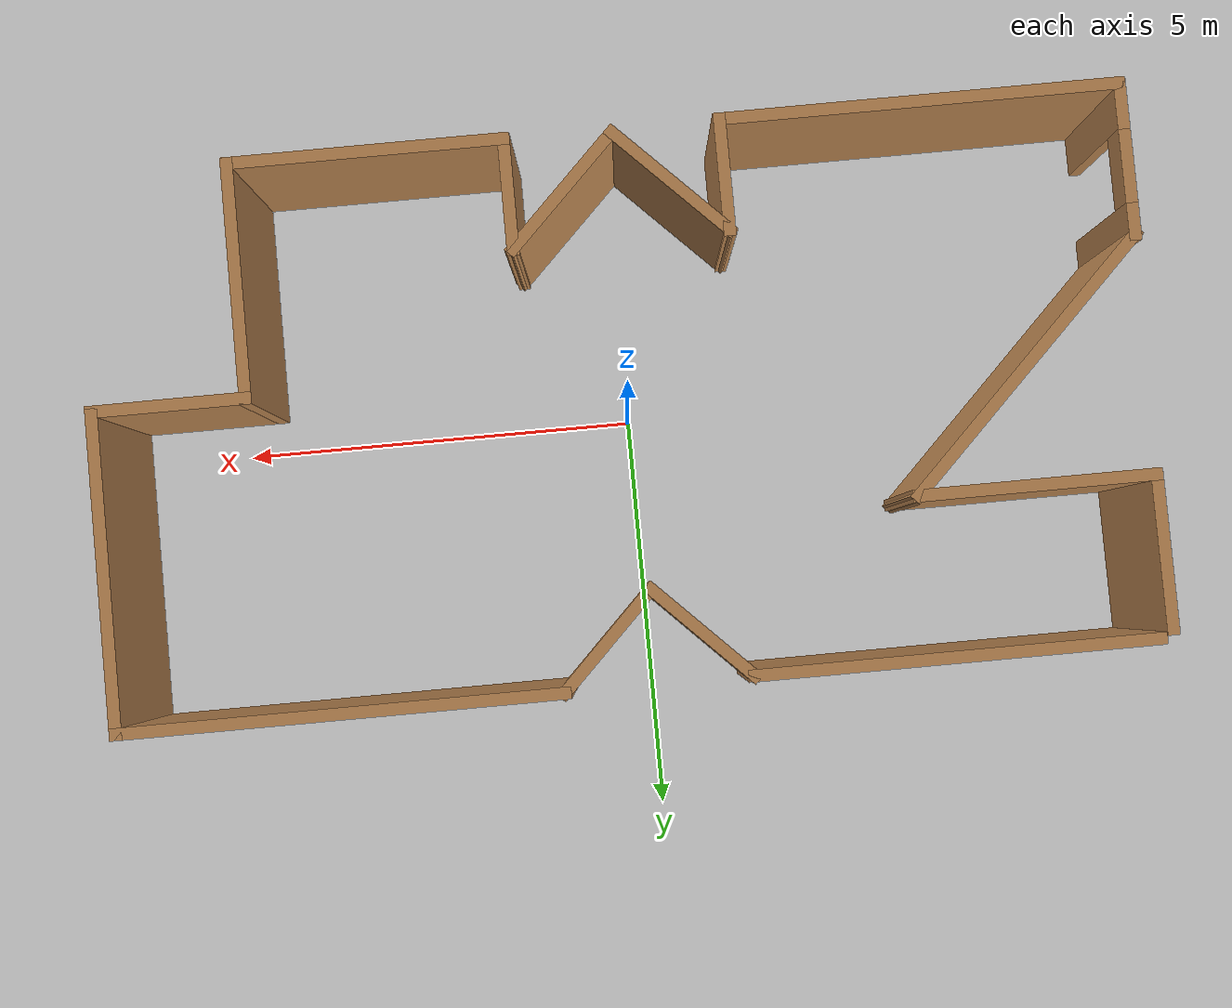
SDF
<sdf version="1.6">
 <world name="default">
  <light name="sun" type="directional">
   <pose>0 0 10 0 -0 0</pose>
   <diffuse>0.8 0.8 0.8 1</diffuse>
   <specular>0.2 0.2 0.2 1</specular>
   <attenuation>
    <range>1000</range>
    <constant>0.9</constant>
    <linear>0.01</linear>
    <quadratic>0.001</quadratic>
   </attenuation>
   <direction>-0.5 0.1 -0.9</direction>
  </light>
  <model name="ground_plane">
   <static>1</static>
   <link name="link">
    <collision name="collision">
     <geometry><plane><normal>0 0 1</normal><size>100 100</size></plane></geometry>
     <surface>
      <contact><collide_bitmask>65535</collide_bitmask></contact>
      <friction><ode><mu>100</mu><mu2>50</mu2></ode></friction>
     </surface>
    </collision>
    <visual name="visual">
     <cast_shadows>0</cast_shadows>
     <geometry><plane><normal>0 0 1</normal><size>100 100</size></plane></geometry>
     <material>
      <script><uri>file://media/materials/scripts/gazebo.material</uri><name>Gazebo/Grey</name></script>
     </material>
    </visual>
   </link>
  </model>
  <gravity>0 0 -9.8</gravity>
  <magnetic_field>6e-06 2.3e-05 -4.2e-05</magnetic_field>
  <atmosphere type="adiabatic"/>
  <physics name="default_physics" default="0" type="ode">
   <max_step_size>0.001</max_step_size>
   <real_time_factor>1</real_time_factor>
   <real_time_update_rate>1000</real_time_update_rate>
  </physics>
  <scene><ambient>0.4 0.4 0.4 1</ambient><background>0.7 0.7 0.7 1</background><shadows>1</shadows></scene>
  <audio><device>default</device></audio>
  <spherical_coordinates>
   <surface_model>EARTH_WGS84</surface_model>
   <latitude_deg>0</latitude_deg>
   <longitude_deg>0</longitude_deg>
   <elevation>0</elevation>
   <heading_deg>0</heading_deg>
  </spherical_coordinates>
  <model name="zmp_building">
   <pose>0.055391 0.013719 0 0 -0 0</pose>
   <link name="Wall_0">
    <collision name="Wall_0_Collision">
     <geometry><box><size>2 0.15 2.5</size></box></geometry>
     <pose>0 0 1.25 0 -0 0</pose>
    </collision>
    <visual name="Wall_0_Visual">
     <pose>0 0 1.25 0 -0 0</pose>
     <geometry><box><size>2 0.15 2.5</size></box></geometry>
     <material>
      <script><uri>file://media/materials/scripts/gazebo.material</uri><name>Gazebo/Wood</name></script>
      <ambient>1 1 1 1</ambient>
     </material>
     <meta><layer>0</layer></meta>
    </visual>
    <pose>-6.26848 2.30861 0 0 -0 -1.5708</pose>
   </link>
   <link name="Wall_1">
    <collision name="Wall_1_Collision">
     <geometry><box><size>3 0.15 2.5</size></box></geometry>
     <pose>0 0 1.25 0 -0 0</pose>
    </collision>
    <visual name="Wall_1_Visual">
     <pose>0 0 1.25 0 -0 0</pose>
     <geometry><box><size>3 0.15 2.5</size></box></geometry>
     <material>
      <script><uri>file://media/materials/scripts/gazebo.material</uri><name>Gazebo/Wood</name></script>
      <ambient>1 1 1 1</ambient>
     </material>
     <meta><layer>0</layer></meta>
    </visual>
    <pose>-4.84348 1.3836 0 0 -0 0</pose>
   </link>
   <link name="Wall_14">
    <collision name="Wall_14_Collision">
     <geometry><box><size>3.5 0.15 2.5</size></box></geometry>
     <pose>0 0 1.25 0 -0 0</pose>
    </collision>
    <visual name="Wall_14_Visual">
     <pose>0 0 1.25 0 -0 0</pose>
     <geometry><box><size>3.5 0.15 2.5</size></box></geometry>
     <material>
      <script><uri>file://media/materials/scripts/gazebo.material</uri><name>Gazebo/Wood</name></script>
      <ambient>1 1 1 1</ambient>
     </material>
     <meta><layer>0</layer></meta>
    </visual>
    <pose>2.82368 -3.36553 0 0 -0 0</pose>
   </link>
   <link name="Wall_15">
    <collision name="Wall_15_Collision">
     <geometry><box><size>3 0.15 2.5</size></box></geometry>
     <pose>0 0 1.25 0 -0 0</pose>
    </collision>
    <visual name="Wall_15_Visual">
     <pose>0 0 1.25 0 -0 0</pose>
     <geometry><box><size>3 0.15 2.5</size></box></geometry>
     <material>
      <script><uri>file://media/materials/scripts/gazebo.material</uri><name>Gazebo/Wood</name></script>
      <ambient>1 1 1 1</ambient>
     </material>
     <meta><layer>0</layer></meta>
    </visual>
    <pose>4.49868 -1.94053 0 0 -0 1.5708</pose>
   </link>
   <link name="Wall_16">
    <collision name="Wall_16_Collision">
     <geometry><box><size>2 0.15 2.5</size></box></geometry>
     <pose>0 0 1.25 0 -0 0</pose>
    </collision>
    <visual name="Wall_16_Visual">
     <pose>0 0 1.25 0 -0 0</pose>
     <geometry><box><size>2 0.15 2.5</size></box></geometry>
     <material>
      <script><uri>file://media/materials/scripts/gazebo.material</uri><name>Gazebo/Wood</name></script>
      <ambient>1 1 1 1</ambient>
     </material>
     <meta><layer>0</layer></meta>
    </visual>
    <pose>5.42368 -0.515533 0 0 -0 0</pose>
   </link>
   <link name="Wall_18">
    <collision name="Wall_18_Collision">
     <geometry><box><size>4 0.15 2.5</size></box></geometry>
     <pose>0 0 1.25 0 -0 0</pose>
    </collision>
    <visual name="Wall_18_Visual">
     <pose>0 0 1.25 0 -0 0</pose>
     <geometry><box><size>4 0.15 2.5</size></box></geometry>
     <material>
      <script><uri>file://media/materials/scripts/gazebo.material</uri><name>Gazebo/Wood</name></script>
      <ambient>1 1 1 1</ambient>
     </material>
     <meta><layer>0</layer></meta>
    </visual>
    <pose>6.34868 1.40947 0 0 -0 1.5708</pose>
   </link>
   <link name="Wall_19">
    <collision name="Wall_19_Collision">
     <geometry><box><size>5.5 0.15 2.5</size></box></geometry>
     <pose>0 0 1.25 0 -0 0</pose>
    </collision>
    <visual name="Wall_19_Visual">
     <pose>0 0 1.25 0 -0 0</pose>
     <geometry><box><size>5.5 0.15 2.5</size></box></geometry>
     <material>
      <script><uri>file://media/materials/scripts/gazebo.material</uri><name>Gazebo/Wood</name></script>
      <ambient>1 1 1 1</ambient>
     </material>
     <meta><layer>0</layer></meta>
    </visual>
    <pose>3.67368 3.33447 0 0 -0 3.14159</pose>
   </link>
   <link name="Wall_2">
    <collision name="Wall_2_Collision">
     <geometry><box><size>4.25 0.15 2.5</size></box></geometry>
     <pose>0 0 1.25 0 -0 0</pose>
    </collision>
    <visual name="Wall_2_Visual">
     <pose>0 0 1.25 0 -0 0</pose>
     <geometry><box><size>4.25 0.15 2.5</size></box></geometry>
     <material>
      <script><uri>file://media/materials/scripts/gazebo.material</uri><name>Gazebo/Wood</name></script>
      <ambient>1 1 1 1</ambient>
     </material>
     <meta><layer>0</layer></meta>
    </visual>
    <pose>-4.86805 -0.065964 0 0 -0 -2.35619</pose>
   </link>
   <link name="Wall_20">
    <collision name="Wall_20_Collision">
     <geometry><box><size>1.75 0.15 2.5</size></box></geometry>
     <pose>0 0 1.25 0 -0 0</pose>
    </collision>
    <visual name="Wall_20_Visual">
     <pose>0 0 1.25 0 -0 0</pose>
     <geometry><box><size>1.75 0.15 2.5</size></box></geometry>
     <material>
      <script><uri>file://media/materials/scripts/gazebo.material</uri><name>Gazebo/Wood</name></script>
      <ambient>1 1 1 1</ambient>
     </material>
     <meta><layer>0</layer></meta>
    </visual>
    <pose>0.432995 2.76878 0 0 -0 -2.35619</pose>
   </link>
   <link name="Wall_21">
    <collision name="Wall_21_Collision">
     <geometry><box><size>1.75 0.15 2.5</size></box></geometry>
     <pose>0 0 1.25 0 -0 0</pose>
    </collision>
    <visual name="Wall_21_Visual">
     <pose>0 0 1.25 0 -0 0</pose>
     <geometry><box><size>1.75 0.15 2.5</size></box></geometry>
     <material>
      <script><uri>file://media/materials/scripts/gazebo.material</uri><name>Gazebo/Wood</name></script>
      <ambient>1 1 1 1</ambient>
     </material>
     <meta><layer>0</layer></meta>
    </visual>
    <pose>-0.698376 2.76878 0 0 -0 2.35619</pose>
   </link>
   <link name="Wall_26">
    <collision name="Wall_26_Collision">
     <geometry><box><size>5 0.15 2.5</size></box></geometry>
     <pose>0 0 1.25 0 -0 0</pose>
    </collision>
    <visual name="Wall_26_Visual">
     <pose>0 0 1.25 0 -0 0</pose>
     <geometry><box><size>5 0.15 2.5</size></box></geometry>
     <material>
      <script><uri>file://media/materials/scripts/gazebo.material</uri><name>Gazebo/Wood</name></script>
      <ambient>1 1 1 1</ambient>
     </material>
     <meta><layer>0</layer></meta>
    </visual>
    <pose>-3.68906 3.33447 0 0 -0 3.14159</pose>
   </link>
   <link name="Wall_3">
    <pose>-6.31761 -2.44053 0 0 -0 -1.5708</pose>
    <visual name="Wall_3_Visual_0">
     <pose>-0.770965 0 1.25 0 -0 0</pose>
     <geometry><box><size>0.45807 0.15 2.5</size></box></geometry>
     <material>
      <script><uri>file://media/materials/scripts/gazebo.material</uri><name>Gazebo/Wood</name></script>
      <ambient>1 1 1 1</ambient>
     </material>
     <meta><layer>0</layer></meta>
    </visual>
    <collision name="Wall_3_Collision_0">
     <geometry><box><size>0.45807 0.15 2.5</size></box></geometry>
     <pose>-0.770965 0 1.25 0 -0 0</pose>
    </collision>
    <visual name="Wall_3_Visual_1">
     <pose>0.679035 0 1.25 0 -0 0</pose>
     <geometry><box><size>0.64193 0.15 2.5</size></box></geometry>
     <material>
      <script><uri>file://media/materials/scripts/gazebo.material</uri><name>Gazebo/Wood</name></script>
      <ambient>1 1 1 1</ambient>
     </material>
     <meta><layer>0</layer></meta>
    </visual>
    <collision name="Wall_3_Collision_1">
     <geometry><box><size>0.64193 0.15 2.5</size></box></geometry>
     <pose>0.679035 0 1.25 0 -0 0</pose>
    </collision>
    <visual name="Wall_3_Visual_2">
     <pose>-0.09193 0 2.25 0 -0 0</pose>
     <geometry><box><size>0.9 0.15 0.5</size></box></geometry>
     <material>
      <script><uri>file://media/materials/scripts/gazebo.material</uri><name>Gazebo/Wood</name></script>
      <ambient>1 1 1 1</ambient>
     </material>
     <meta><layer>0</layer></meta>
    </visual>
    <collision name="Wall_3_Collision_2">
     <geometry><box><size>0.9 0.15 0.5</size></box></geometry>
     <pose>-0.09193 0 2.25 0 -0 0</pose>
    </collision>
   </link>
   <link name="Wall_4">
    <collision name="Wall_4_Collision">
     <geometry><box><size>5 0.15 2.5</size></box></geometry>
     <pose>0 0 1.25 0 -0 0</pose>
    </collision>
    <visual name="Wall_4_Visual">
     <pose>0 0 1.25 0 -0 0</pose>
     <geometry><box><size>5 0.15 2.5</size></box></geometry>
     <material>
      <script><uri>file://media/materials/scripts/gazebo.material</uri><name>Gazebo/Wood</name></script>
      <ambient>1 1 1 1</ambient>
     </material>
     <meta><layer>0</layer></meta>
    </visual>
    <pose>-3.89262 -3.36553 0 0 -0 0</pose>
   </link>
   <link name="Wall_5">
    <collision name="Wall_5_Collision">
     <geometry><box><size>1.5 0.15 2.5</size></box></geometry>
     <pose>0 0 1.25 0 -0 0</pose>
    </collision>
    <visual name="Wall_5_Visual">
     <pose>0 0 1.25 0 -0 0</pose>
     <geometry><box><size>1.5 0.15 2.5</size></box></geometry>
     <material>
      <script><uri>file://media/materials/scripts/gazebo.material</uri><name>Gazebo/Wood</name></script>
      <ambient>1 1 1 1</ambient>
     </material>
     <meta><layer>0</layer></meta>
    </visual>
    <pose>-1.46761 -2.69053 0 0 -0 1.5708</pose>
   </link>
   <link name="Wall_6">
    <collision name="Wall_6_Collision">
     <geometry><box><size>2 0.15 2.5</size></box></geometry>
     <pose>0 0 1.25 0 -0 0</pose>
    </collision>
    <visual name="Wall_6_Visual">
     <pose>0 0 1.25 0 -0 0</pose>
     <geometry><box><size>2 0.15 2.5</size></box></geometry>
     <material>
      <script><uri>file://media/materials/scripts/gazebo.material</uri><name>Gazebo/Wood</name></script>
      <ambient>1 1 1 1</ambient>
     </material>
     <meta><layer>0</layer></meta>
    </visual>
    <pose>-0.813541 -2.66961 0 0 -0 -0.785398</pose>
   </link>
   <link name="Wall_7">
    <collision name="Wall_7_Collision">
     <geometry><box><size>2 0.15 2.5</size></box></geometry>
     <pose>0 0 1.25 0 -0 0</pose>
    </collision>
    <visual name="Wall_7_Visual">
     <pose>0 0 1.25 0 -0 0</pose>
     <geometry><box><size>2 0.15 2.5</size></box></geometry>
     <material>
      <script><uri>file://media/materials/scripts/gazebo.material</uri><name>Gazebo/Wood</name></script>
      <ambient>1 1 1 1</ambient>
     </material>
     <meta><layer>0</layer></meta>
    </visual>
    <pose>0.494607 -2.66961 0 0 -0 0.785398</pose>
   </link>
   <link name="Wall_8">
    <collision name="Wall_8_Collision">
     <geometry><box><size>1.5 0.15 2.5</size></box></geometry>
     <pose>0 0 1.25 0 -0 0</pose>
    </collision>
    <visual name="Wall_8_Visual">
     <pose>0 0 1.25 0 -0 0</pose>
     <geometry><box><size>1.5 0.15 2.5</size></box></geometry>
     <material>
      <script><uri>file://media/materials/scripts/gazebo.material</uri><name>Gazebo/Wood</name></script>
      <ambient>1 1 1 1</ambient>
     </material>
     <meta><layer>0</layer></meta>
    </visual>
    <pose>1.14868 -2.69053 0 0 -0 -1.5708</pose>
   </link>
   <static>1</static>
  </model>
 </world>
</sdf>
